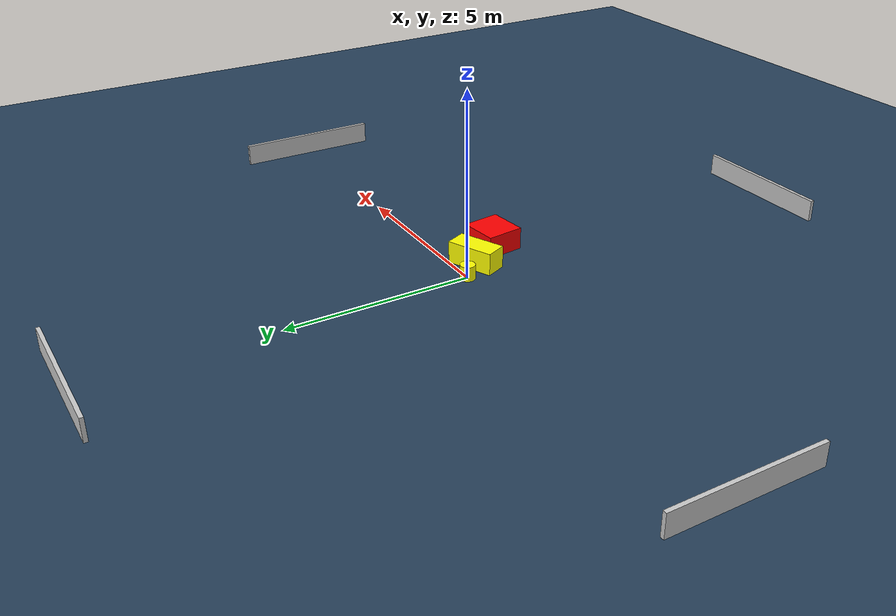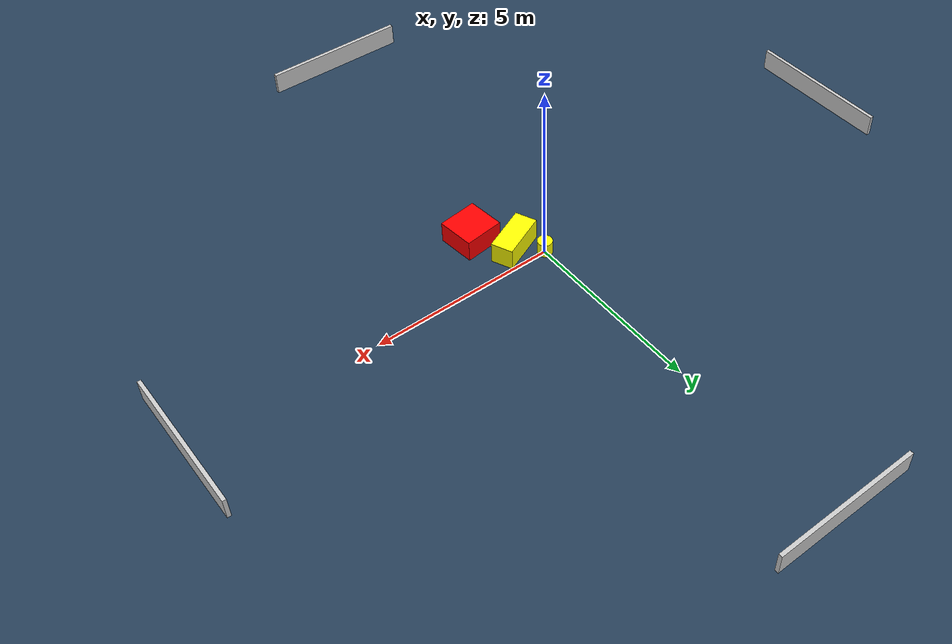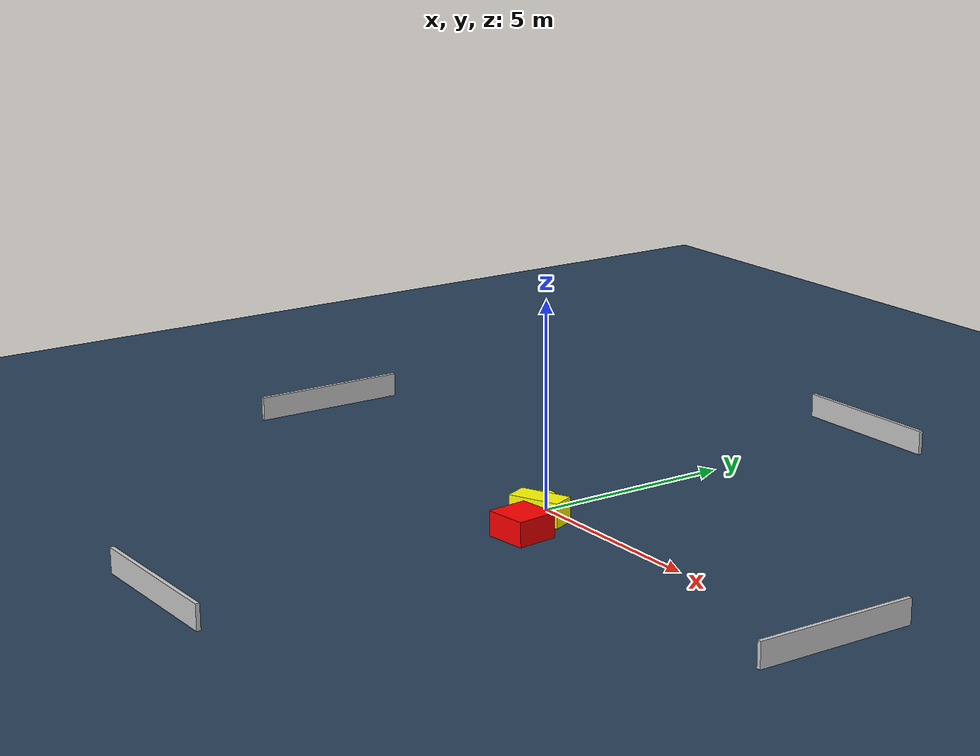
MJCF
<?xml version="1.0" ?>
<mujoco model="generated_environment">
  <option timestep="0.01" integrator="RK4" cone="elliptic"/>
  <default>
    <geom density="1"/>
  </default>
  <asset>
    <texture builtin="gradient" height="3072" name="skybox" rgb1="0.3 0.5 0.7" rgb2="0 0 0" type="skybox" width="512"/>
    <texture builtin="checker" height="300" name="groundplane" rgb1="0.2 0.3 0.4" rgb2="0.1 0.2 0.3" type="2d" width="300"/>
    <material name="groundplane" reflectance="0.2" texrepeat="5 5" texture="groundplane"/>
  </asset>
  <worldbody>
    <light dir="0 0 -1" directional="true" pos="0 0 1.5"/>
    <geom condim="3" friction="0.5 0.005 0.001" material="groundplane" name="floor" pos="0 0 0" size="0 0 0.05" type="plane"/>
    <body name="walls">
      <geom name="wall_1" condim="4" pos="-10.0 0.0 0.3" rgba="0.800000011920929 0.800000011920929 0.800000011920929 1.0" size="0.05 2.0 0.3" type="box"/>
      <geom name="wall_2" condim="4" pos="10.0 0.0 0.3" rgba="0.800000011920929 0.800000011920929 0.800000011920929 1.0" size="0.05 2.0 0.3" type="box"/>
      <geom name="wall_3" condim="4" pos="0.0 -10.0 0.3" rgba="0.800000011920929 0.800000011920929 0.800000011920929 1.0" size="2.0 0.05 0.3" type="box"/>
      <geom name="wall_4" condim="4" pos="0.0 10.0 0.3" rgba="0.800000011920929 0.800000011920929 0.800000011920929 1.0" size="2.0 0.05 0.3" type="box"/>
    </body>
    <body name="robot">
      <joint name="joint_x" type="slide" pos="0 0 0" axis="1 0 0"/>
      <joint name="joint_y" type="slide" pos="0 0 0" axis="0 1 0"/>
      <geom name="robot" type="cylinder" pos="0.0 0.0 0.2" size="0.2 0.2 0.0" mass="5.0" friction="1.0 0.005 0.0001" condim="4" rgba="1.0 1.0 0.0 1.0"/>
    </body>
    <body name="obstacle_1_movable">
      <geom name="obstacle_1_movable" condim="4" pos="0.5423465140072071 -0.563488720519154 0.3" euler="0 0 113.84979007662905" friction="0.0 0.005 0.001" rgba="1.0 1.0 0.0 1.0" size="0.297133216862989 0.6426612709397654 0.3" type="box" mass="0.1"/>
      <joint type="free"/>
    </body>
    <body name="obstacle_2_static">
      <geom name="obstacle_2_static" condim="4" pos="1.2035154850786627 -1.5051238341433102 0.3" euler="0 0 6.573043835362236" friction="0.0 0.005 0.001" rgba="1.0 0.0 0.0 1.0" size="0.5329846185478568 0.5112636699098487 0.3" type="box"/>
    </body>
  </worldbody>
  <actuator>
    <motor name="actuator_x" joint="joint_x" gear="1" ctrlrange="-1 1"/>
    <motor name="actuator_y" joint="joint_y" gear="1" ctrlrange="-1 1"/>
  </actuator>
</mujoco>
